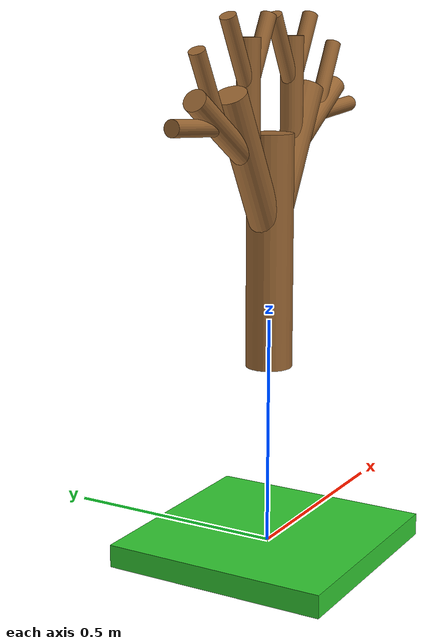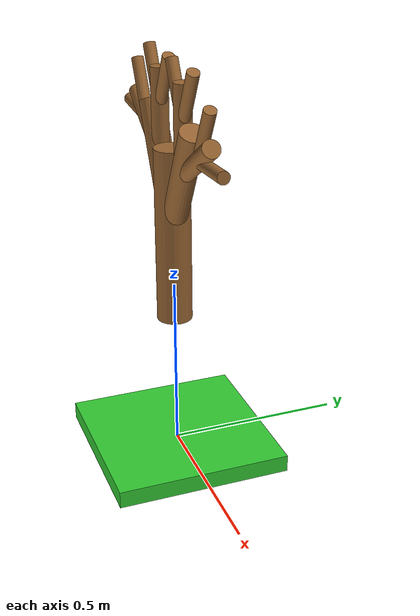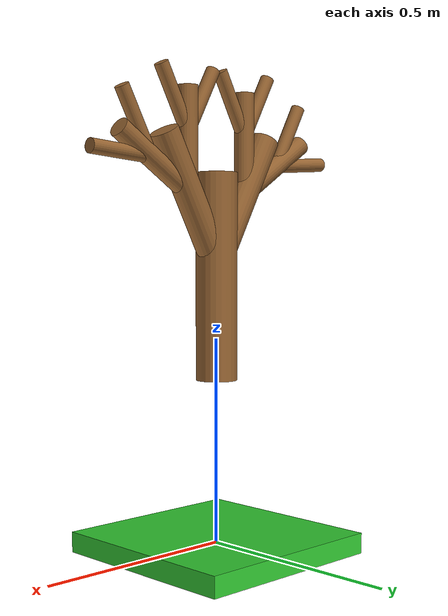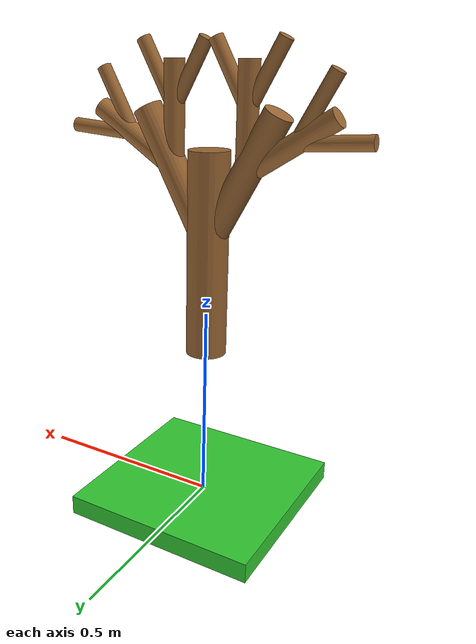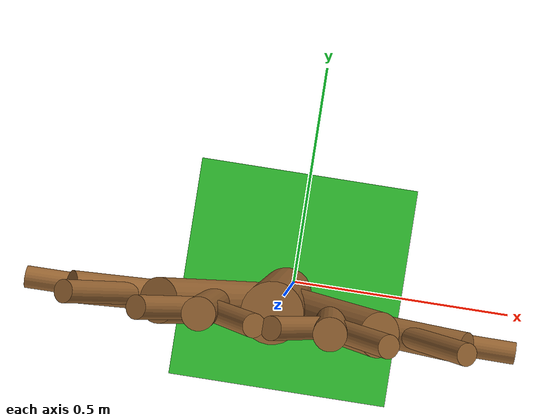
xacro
<?xml version="1.0"?>
<robot xmlns:xacro="http://www.ros.org/wiki/xacro" name="fractal_tree">
  <xacro:include filename="$(find fractal_robot)/engine.xacro" />

  <link name="base_link">
    <visual>
      <geometry><box size="0.5 0.5 0.05"/></geometry>
      <material name="grass"><color rgba="0.2 0.8 0.2 1"/></material>
    </visual>
  </link>

  <!-- Start the recursive growth -->
  <xacro:branch
    name="trunk"
    parent="base_link"
    depth="3"
    length="0.5"
    radius="0.05"
    angle_offset="0" />

</robot>

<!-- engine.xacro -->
<robot xmlns:xacro="http://www.ros.org/wiki/xacro">
  <xacro:macro name="branch" params="name parent depth length radius angle_offset">
    <!-- 1. Define the Link for this branch -->
    <link name="link_${name}">
      <visual>
        <origin xyz="0 0 ${length/2}" rpy="0 0 0"/>
        <geometry><cylinder radius="${radius}" length="${length}"/></geometry>
        <material name="wood"><color rgba="0.6 0.4 0.2 1"/></material>
      </visual>
    </link>

    <!-- 2. Define the Joint to parent -->
    <joint name="joint_${name}" type="revolute">
      <parent link="${parent}"/>
      <child link="link_${name}"/>
      <origin xyz="0 0 ${length * 0.8}" rpy="0 ${angle_offset} 0"/>
      <axis xyz="0 1 0"/>
      <limit lower="-0.5" upper="0.5" effort="10" velocity="1"/>
    </joint>

    <!-- 3. RECURSION: Generate 2 child branches if depth > 0 -->
    <xacro:if value="${depth > 0}">
      <!-- Left child -->
      <xacro:branch
        name="${name}_L"
        parent="link_${name}"
        depth="${depth - 1}"
        length="${length * 0.7}"
        radius="${radius * 0.7}"
        angle_offset="0.5" />

      <!-- Right child -->
      <xacro:branch
        name="${name}_R"
        parent="link_${name}"
        depth="${depth - 1}"
        length="${length * 0.7}"
        radius="${radius * 0.7}"
        angle_offset="-0.5" />
    </xacro:if>
  </xacro:macro>
</robot>
